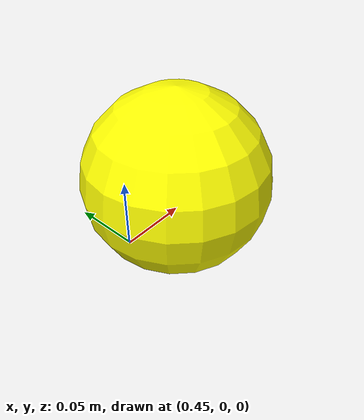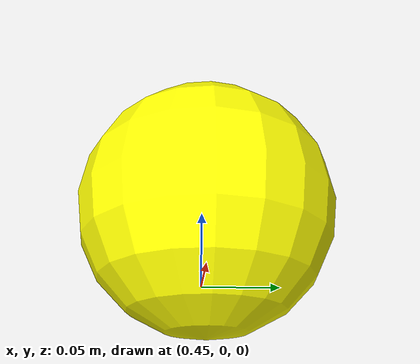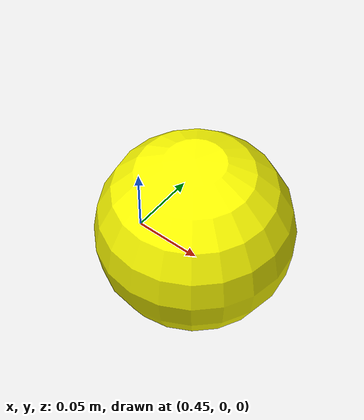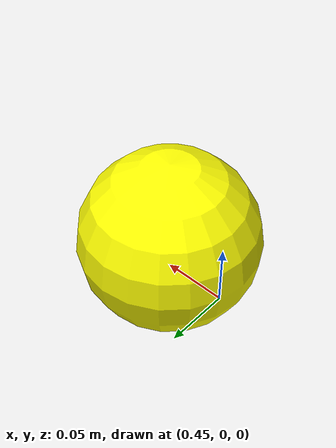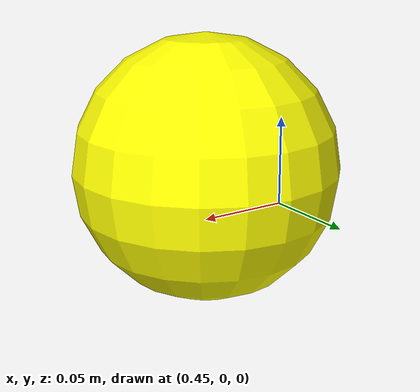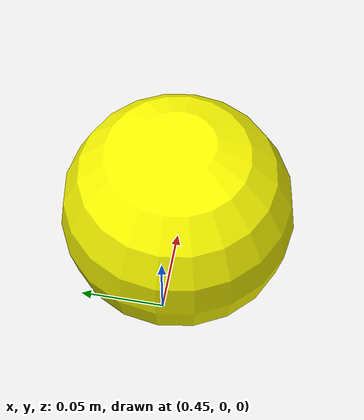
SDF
<?xml version="1.0" ?>
<sdf version="1.9">
  <model name="soccer_ball">
    <pose>0.5 0 0.03 0 0 0</pose>

    <link name="ball_link">
      <inertial>
        <mass>0.45</mass> <!-- real soccer ball mass -->
        <inertia>
          <ixx>0.002</ixx>
          <iyy>0.002</iyy>
          <izz>0.002</izz>
        </inertia>
      </inertial>

      <collision name="collision">
        <geometry>
          <sphere>
            <radius>0.07</radius> <!-- size 5 soccer ball -->
          </sphere>
        </geometry>
        <surface>
          <friction>
            <ode>
              <mu>1.3</mu>
              <mu2>1.3</mu2>
            </ode>
          </friction>
          <bounce>
            <restitution_coefficient>0.6</restitution_coefficient>
          </bounce>
        </surface>
      </collision>

      <visual name="visual">
        <geometry>
          <sphere>
            <radius>0.07</radius>
          </sphere>
        </geometry>
        <material>
          <ambient>1 1 0 1</ambient>
          <diffuse>1 1 0 1</diffuse>
        </material>
      </visual>
    </link>
  </model>
</sdf>
